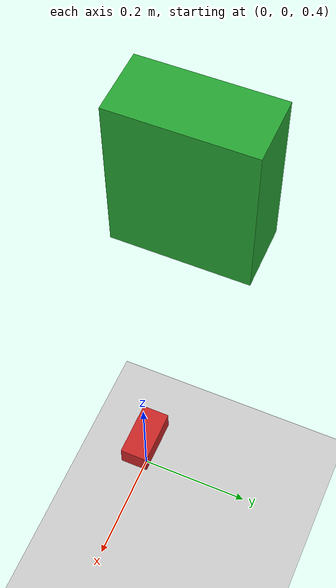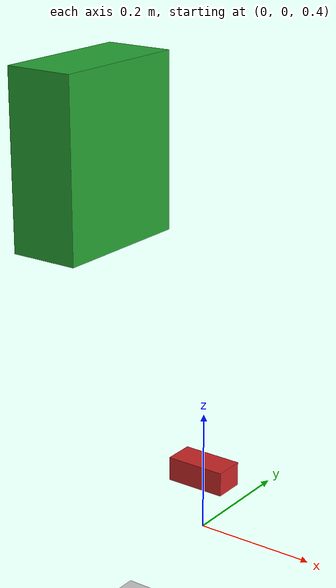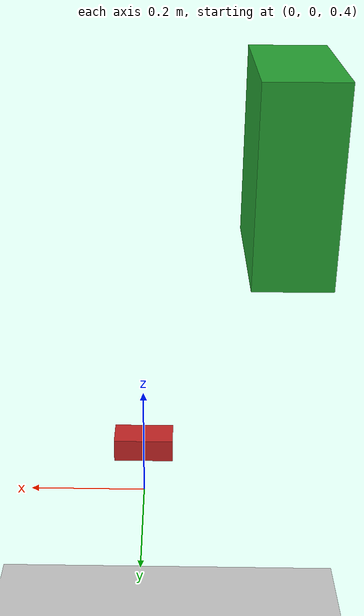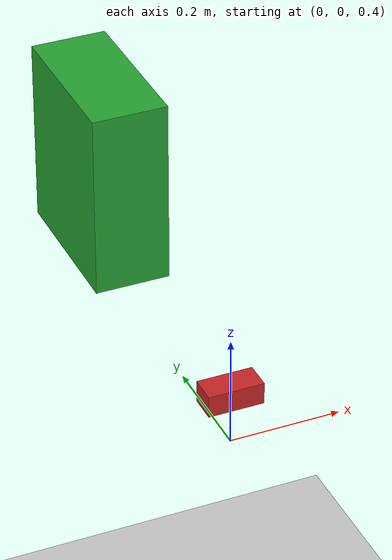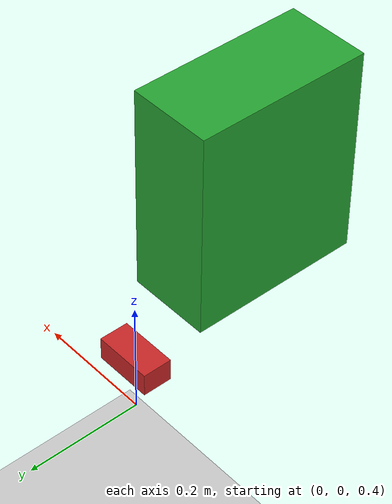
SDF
<?xml version="1.0" ?>
<sdf version="1.6">
  <world name="default">
    <include>
      <uri>model://ground_plane</uri>
    </include>

    <include>
      <uri>model://sun</uri>
    </include>

    <!-- Definir um modelo simples -->
    <model name="propeller_test_model">
	  <!-- Ajustar a posição para que o modelo esteja logo acima do solo -->
	  <pose>0 0 0.5 0 0 0</pose>

	  <!-- Um link simples -->
	  <link name="base_link">
		<inertial>
		  <mass>1.0</mass>
		  <inertia>
			<ixx>0.1</ixx>
			<iyy>0.1</iyy>
			<izz>0.1</izz>
		  </inertia>
		</inertial>
		<visual name="imu_visual">
		  <pose>0 0 0 3.141593 0 0</pose>
		  <geometry>
			<box>
			  <size>0.1 0.05 0.04</size>
			</box>
		  </geometry>
		  <material>
			<script>
			  <uri>file://media/materials/scripts/gazebo.material</uri>
			  <name>Gazebo/Red</name>
			</script>
		  </material>
		</visual>
		<collision name="base_link_collision">
		  <pose>0 0 0 0 0 0</pose>
		  <geometry>
			<box>
			  <size>0.08 0.08 0.10</size>
			</box>
		  </geometry>
		  <surface>
			<contact>
			  <ode>
				<max_vel>100.0</max_vel>
				<min_depth>0.001</min_depth>
			  </ode>
			</contact>
			<friction>
			  <ode>
				<mu>100000.0</mu>
				<mu2>100000.0</mu2>
			  </ode>
			</friction>
		  </surface>
		</collision>
	  </link>

	  <link name='bateria'>
	    <pose>-0.22 0 0.5 0 0 0</pose>
	    <inertial>
	  	<pose>0 0 0 0 0 0</pose>
	  	<mass>3.00</mass>
	  	<inertia>
	  	  <ixx>0.02</ixx>
	  	  <ixy>0</ixy>
	  	  <ixz>0</ixz>
	  	  <iyy>0.02</iyy>
	  	  <iyz>0</iyz>
	  	  <izz>0.02</izz>
	  	</inertia>
	    </inertial>
	    <visual name="bateria_visual">
	  	<pose>0 0 0 0 0 0</pose>
	  	<geometry>
	  	  <box>
	  		<size>0.12 0.25 0.30</size>
	  	  </box>
	  	</geometry>
	  	<material>
	  	  <script>
	  		<uri>file://media/materials/scripts/gazebo.material</uri>
	  		<name>Gazebo/Green</name>
	  	  </script>
	  	</material>
	    </visual>
	  </link>

	<plugin name="euler_aero_plugin" filename="libeuler_aerodinamica_v1.so">
	  <robotNamespace>/propeller_test_model</robotNamespace>
	  <xyzOffset>0 0 0</xyzOffset> <!-- Altere para a posição desejada -->

	  <!-- Tópicos para publicação de vento -->
	  <windForcePubTopic>vento/forca</windForcePubTopic>
	  <windSpeedPubTopic>vento/velocidade</windSpeedPubTopic>

	  <!-- Definições de vento constante -->
	  <windSpeedMean>0.0</windSpeedMean> <!-- Velocidade média do vento (m/s) -->
	  <windSpeedVariance>1.0</windSpeedVariance> <!-- Variação da velocidade do vento (m/s) -->
	  <windDirection>1 0 0</windDirection> <!-- Direção do vento em coordenadas XYZ -->

	  <frontArea>2.0</frontArea> <!-- Direção da rajada em coordenadas XYZ -->
	  <dragCoeff>2.0</dragCoeff> <!-- Direção da rajada em coordenadas XYZ -->

	  <!-- Campo de vento customizado -->
	  <useCustomStaticWindField>false</useCustomStaticWindField>

	  <windForceVariance>1.0</windForceVariance> <!-- Direção da rajada em coordenadas XYZ -->
	  <!-- Definições de rajadas de vento -->
	  <windGustStart>0.0</windGustStart> <!-- Tempo em que a rajada começa (s) -->
	  <windGustDuration>1.0</windGustDuration> <!-- Duração da rajada (s) -->
	  <windGustForceMean>5.0</windGustForceMean> <!-- Força média da rajada (N) -->
	  <windGustForceVariance>2.0</windGustForceVariance> <!-- Variação da força da rajada (N) -->
	  <windGustDirection>1 0 0</windGustDirection> <!-- Direção da rajada em coordenadas XYZ -->
	  <!-- Link que será afetado pelo vento -->
	  <linkName>base_link</linkName> <!-- Substitua por nome real do link -->

	  <!-- ID do frame para mensagens -->
	  <frameId>world</frameId>
	</plugin>

	<!-- Inclusão do plugin euler_batt_plugin -->
	<plugin name="euler_batt_plugin" filename="libeuler_aerodinamica_v1_batt_plugin.so">
		<!-- Tipo de bateria: 'Welion', 'LiPo', 'LiIon' ou outro definido no plugin -->
		<batteryType>Welion</batteryType>

		<!-- Número de células em série (S) -->
		<cellsInSeries>14</cellsInSeries>

		<!-- Número de células em paralelo (P) -->
		<cellsInParallel>3</cellsInParallel>

		<!-- Nome do link onde a massa da bateria será atribuída -->
		<linkName>bateria</linkName>

		<!-- Tópico ROS onde a corrente consumida será recebida -->
		<currentTopic>/battery/current</currentTopic>

		<!-- Tópico ROS onde a tensão disponível será publicada -->
		<voltagePubTopic>/battery/voltage</voltagePubTopic>

		<!-- Tópico ROS onde o estado da bateria será publicado -->
		<batteryStatePubTopic>/battery/state</batteryStatePubTopic>
	</plugin>

    </model>
  </world>
</sdf>
